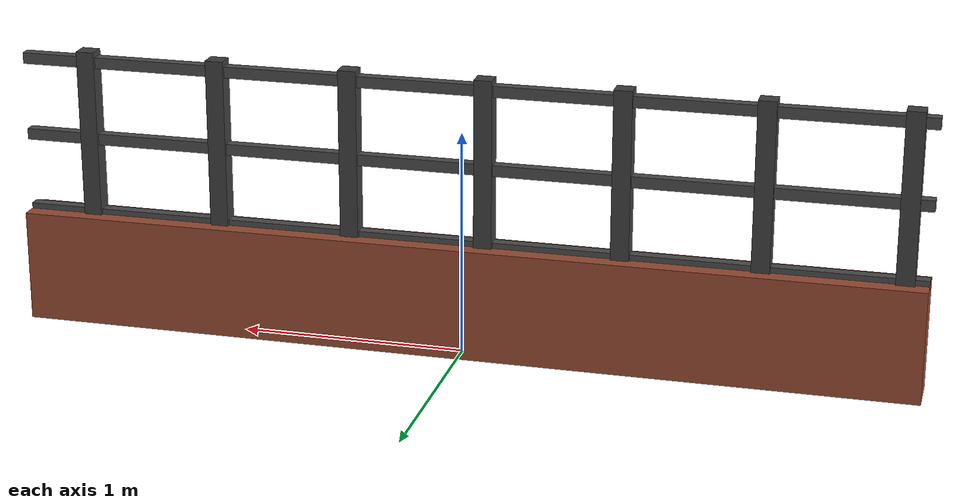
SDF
<?xml version="1.0" ?>
<sdf version="1.6">
  <model name="fence_template">
    <static>true</static>
    <link name="link">
      <!-- 벽돌 기단 (Brick Base) -->
      <collision name="brick_base_collision">
        <pose>0 0 0.25 0 0 0</pose>
        <geometry>
          <box>
            <size>4 0.2 0.5</size>
          </box>
        </geometry>
      </collision>
      <visual name="brick_base_visual">
        <pose>0 0 0.25 0 0 0</pose>
        <geometry>
          <box>
            <size>4 0.2 0.5</size>
          </box>
        </geometry>
        <material>
          <ambient>0.6 0.3 0.2 1</ambient>
          <diffuse>0.6 0.3 0.2 1</diffuse>
          <specular>0.1 0.1 0.1 1</specular>
        </material>
      </visual>

      <!-- 상단 가로대 (Top Rail) -->
      <collision name="top_rail_collision">
        <pose>0 0 1.2 0 0 0</pose>
        <geometry>
          <box>
            <size>4 0.05 0.05</size>
          </box>
        </geometry>
      </collision>
      <visual name="top_rail_visual">
        <pose>0 0 1.2 0 0 0</pose>
        <geometry>
          <box>
            <size>4 0.05 0.05</size>
          </box>
        </geometry>
        <material>
          <ambient>0.3 0.3 0.3 1</ambient>
          <diffuse>0.3 0.3 0.3 1</diffuse>
          <specular>0.5 0.5 0.5 1</specular>
        </material>
      </visual>

      <!-- 중간 가로대 (Middle Rail) -->
      <collision name="middle_rail_collision">
        <pose>0 0 0.85 0 0 0</pose>
        <geometry>
          <box>
            <size>4 0.05 0.05</size>
          </box>
        </geometry>
      </collision>
      <visual name="middle_rail_visual">
        <pose>0 0 0.85 0 0 0</pose>
        <geometry>
          <box>
            <size>4 0.05 0.05</size>
          </box>
        </geometry>
        <material>
          <ambient>0.3 0.3 0.3 1</ambient>
          <diffuse>0.3 0.3 0.3 1</diffuse>
          <specular>0.5 0.5 0.5 1</specular>
        </material>
      </visual>

      <!-- 수직 기둥들 (Vertical Posts) -->
      <visual name="post_1">
        <pose>-1.9 0 0.75 0 0 0</pose>
        <geometry>
          <box>
            <size>0.08 0.08 1.0</size>
          </box>
        </geometry>
        <material>
          <ambient>0.25 0.25 0.25 1</ambient>
          <diffuse>0.25 0.25 0.25 1</diffuse>
        </material>
      </visual>

      <visual name="post_2">
        <pose>-1.3 0 0.75 0 0 0</pose>
        <geometry>
          <box>
            <size>0.08 0.08 1.0</size>
          </box>
        </geometry>
        <material>
          <ambient>0.25 0.25 0.25 1</ambient>
          <diffuse>0.25 0.25 0.25 1</diffuse>
        </material>
      </visual>

      <visual name="post_3">
        <pose>-0.7 0 0.75 0 0 0</pose>
        <geometry>
          <box>
            <size>0.08 0.08 1.0</size>
          </box>
        </geometry>
        <material>
          <ambient>0.25 0.25 0.25 1</ambient>
          <diffuse>0.25 0.25 0.25 1</diffuse>
        </material>
      </visual>

      <visual name="post_4">
        <pose>-0.1 0 0.75 0 0 0</pose>
        <geometry>
          <box>
            <size>0.08 0.08 1.0</size>
          </box>
        </geometry>
        <material>
          <ambient>0.25 0.25 0.25 1</ambient>
          <diffuse>0.25 0.25 0.25 1</diffuse>
        </material>
      </visual>

      <visual name="post_5">
        <pose>0.5 0 0.75 0 0 0</pose>
        <geometry>
          <box>
            <size>0.08 0.08 1.0</size>
          </box>
        </geometry>
        <material>
          <ambient>0.25 0.25 0.25 1</ambient>
          <diffuse>0.25 0.25 0.25 1</diffuse>
        </material>
      </visual>

      <visual name="post_6">
        <pose>1.1 0 0.75 0 0 0</pose>
        <geometry>
          <box>
            <size>0.08 0.08 1.0</size>
          </box>
        </geometry>
        <material>
          <ambient>0.25 0.25 0.25 1</ambient>
          <diffuse>0.25 0.25 0.25 1</diffuse>
        </material>
      </visual>

      <visual name="post_7">
        <pose>1.7 0 0.75 0 0 0</pose>
        <geometry>
          <box>
            <size>0.08 0.08 1.0</size>
          </box>
        </geometry>
        <material>
          <ambient>0.25 0.25 0.25 1</ambient>
          <diffuse>0.25 0.25 0.25 1</diffuse>
        </material>
      </visual>

      <!-- 하단 가로대 (Bottom Rail) -->
      <visual name="bottom_rail">
        <pose>0 0 0.5 0 0 0</pose>
        <geometry>
          <box>
            <size>4 0.05 0.05</size>
          </box>
        </geometry>
        <material>
          <ambient>0.3 0.3 0.3 1</ambient>
          <diffuse>0.3 0.3 0.3 1</diffuse>
        </material>
      </visual>
    </link>
  </model>
</sdf>
